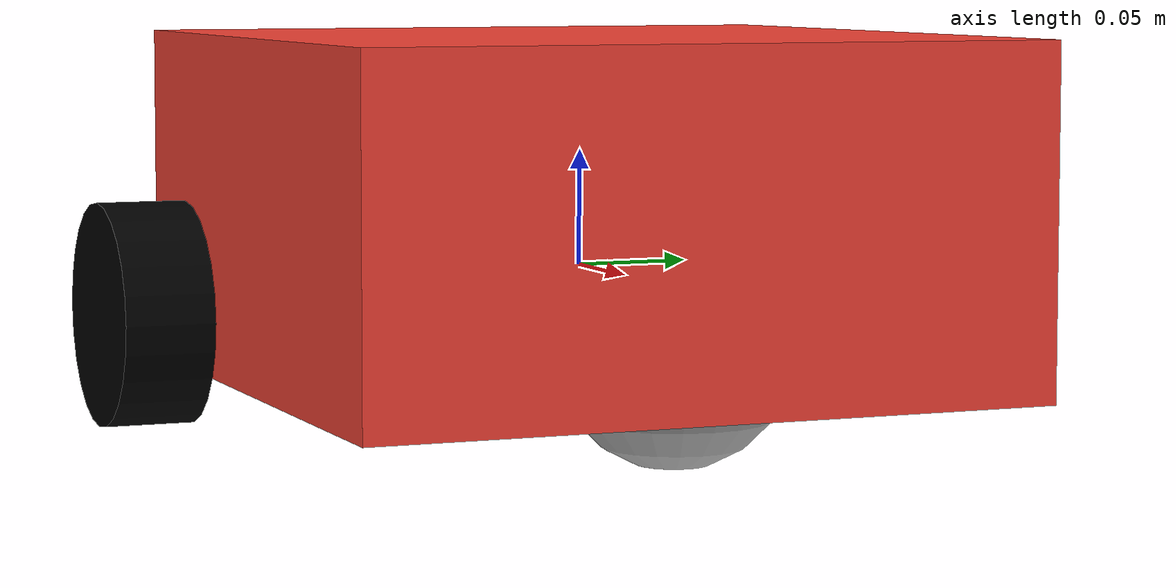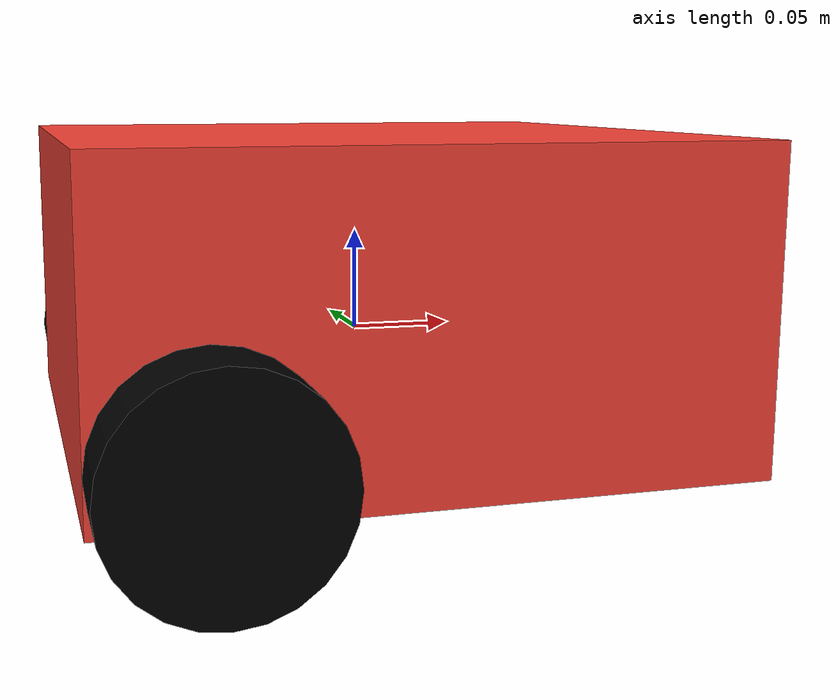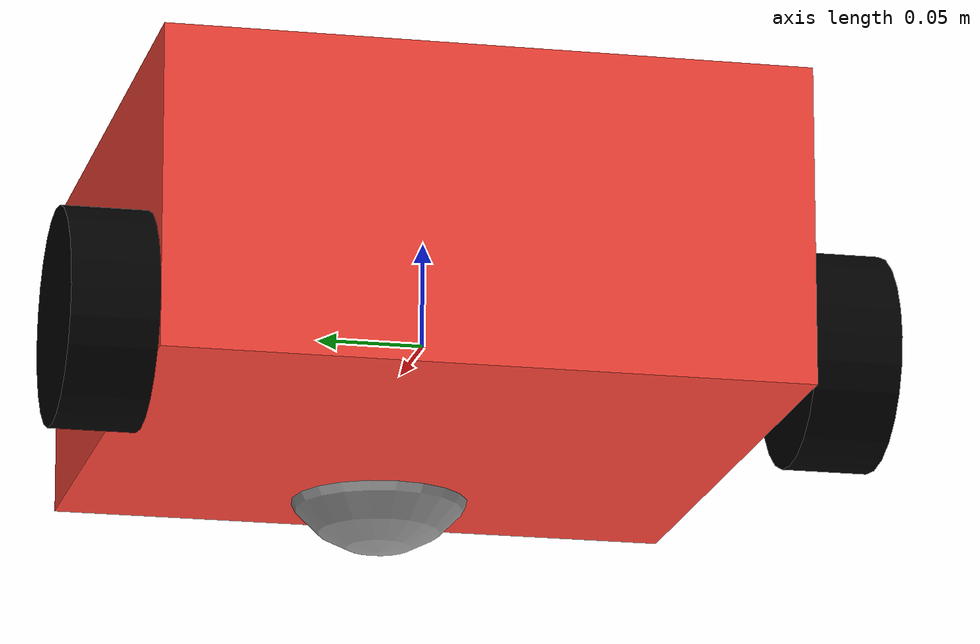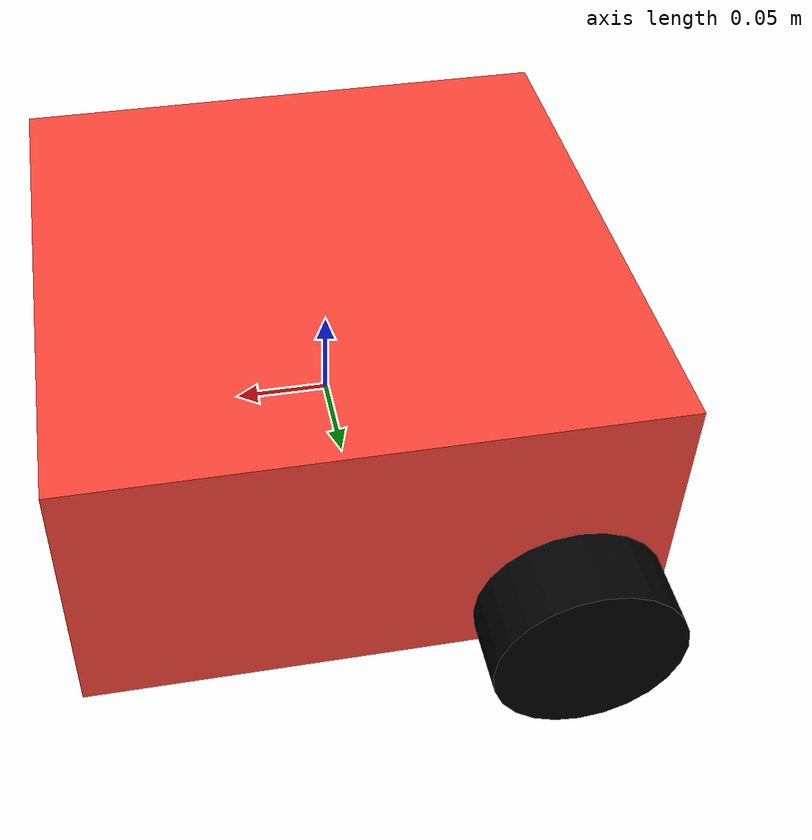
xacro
<?xml version="1.0"?>

<robot name="diff_drive_robot" xmlns:xacro="http://www.ros.org/wiki/xacro">

    <!-- Robot Parameters -->
    <xacro:property name="PI" value="3.14159265"/>

    <xacro:property name="chassis_length" value="0.3"/>
    <xacro:property name="chassis_width" value="0.3"/>
    <xacro:property name="chassis_height" value="0.15"/>
    <xacro:property name="chassis_density" value="7850.0"/> <!-- Steel -->
    <xacro:property name="chassis_mass" value="${chassis_density * chassis_length * chassis_height * chassis_width}"/>
    <xacro:property name="chassis_inertia_x" value="${1.0/12.0 * chassis_mass * (chassis_height*chassis_height + chassis_width*chassis_width)}"/>
    <xacro:property name="chassis_inertia_y" value="${1.0/12.0 * chassis_mass * (chassis_length*chassis_length + chassis_height*chassis_height)}"/>
    <xacro:property name="chassis_inertia_z" value="${1.0/12.0 * chassis_mass * (chassis_length*chassis_length + chassis_width*chassis_width)}"/>

    <xacro:property name="wheel_radius" value="0.05"/>
    <xacro:property name="wheel_width" value="0.04"/>
    <xacro:property name="wheel_separation" value="${chassis_width + wheel_width}"/>
    <xacro:property name="wheel_offset" value="${chassis_length/2 - wheel_radius}"/>
    <xacro:property name="wheel_density" value="900"/> <!-- Ruber -->
    <xacro:property name="wheel_mass" value="${wheel_density * PI * wheel_radius * wheel_radius * wheel_width}"/>
    <xacro:property name="wheel_inertia_x" value="${1.0/12.0 * wheel_mass * (3*wheel_radius*wheel_radius + wheel_width*wheel_width)}"/>
    <xacro:property name="wheel_inertia_y" value="${1.0/12.0 * wheel_mass * (3*wheel_radius*wheel_radius + wheel_width*wheel_width)}"/>
    <xacro:property name="wheel_inertia_z" value="${1.0/2.0 * wheel_mass * wheel_radius * wheel_radius}"/>

    <xacro:property name="caster_radius" value="0.05"/>
    <xacro:property name="caster_offset" value="${chassis_length/2 - caster_radius}"/>
    <xacro:property name="caster_density" value="0.1"/>
    <xacro:property name="caster_mass" value="${caster_density * 4.0/3.0 * PI * caster_radius * caster_radius * caster_radius}"/>
    <xacro:property name="caster_inertia_x" value="${2.0/5.0 * caster_mass * caster_radius * caster_radius}"/>
    <xacro:property name="caster_inertia_y" value="${2.0/5.0 * caster_mass * caster_radius * caster_radius}"/>
    <xacro:property name="caster_inertia_z" value="${2.0/5.0 * caster_mass * caster_radius * caster_radius}"/>

    <!-- Control Parameters -->
    <xacro:property name="max_linear_acceleration" value="10"/>

    <!-- Links -->

    <!-- chassis Link -->
    <link name="chassis_link">
        <visual>
            <origin xyz="0 0 ${caster_radius/2}" rpy="0.0 0.0 0.0"/>
            <geometry>
                <box size="${chassis_length} ${chassis_width} ${chassis_height}"/>
            </geometry>
            <material name="chassis_material">
                <color rgba="0.96 0.26 0.21 1.0"/>
            </material>
        </visual>
        <collision>
            <origin xyz="0 0 ${caster_radius/2}" rpy="0.0 0.0 0.0"/>
            <geometry>
                <box size="${chassis_length} ${chassis_width} ${chassis_height}"/>
            </geometry>
        </collision>
        <inertial>
            <mass value="10"/>
            <inertia ixx="${chassis_inertia_x}" ixy="0.0" ixz="0.0" iyy="${chassis_inertia_y}" iyz="0" izz="${chassis_inertia_z}"/>
            <origin xyz="0 0 ${caster_radius/2}" rpy="0 0 0"/>
        </inertial>
    </link>

    <!-- Left Wheel -->
    <link name="left_wheel_link">
        <visual>
            <origin xyz="0.0 0.0 0.0" rpy="${PI/2} 0.0 0.0"/>
            <geometry>
                <cylinder radius="${wheel_radius}" length="${wheel_width}"/>
            </geometry>
            <material name="wheel_material">
                <color rgba="0.0 0.0 0.0 1.0"/>
            </material>
        </visual>
        <collision>
            <origin xyz="0.0 0.0 0.0" rpy="${PI/2} 0.0 0.0"/>
            <geometry>
                <cylinder radius="${wheel_radius}" length="${wheel_width}"/>
            </geometry>
        </collision>
        <inertial>
            <mass value="2"/>
            <inertia ixx="${wheel_inertia_x}" ixy="0.0" ixz="0.0" iyy="${wheel_inertia_y}" iyz="0" izz="${wheel_inertia_z}"/>
            <origin xyz="0.0 0.0 0.0" rpy="${PI/2} 0.0 0.0"/>
        </inertial>
    </link>

    <!-- Right Wheel -->
    <link name="right_wheel_link">
        <visual>
            <origin xyz="0.0 0.0 0.0" rpy="${PI/2} 0.0 0.0"/>
            <geometry>
                <cylinder radius="${wheel_radius}" length="${wheel_width}"/>
            </geometry>
            <material name="wheel_material">
                <color rgba="0.0 0.0 0.0 1.0"/>
            </material>
        </visual>
        <collision>
            <origin xyz="0.0 0.0 0.0" rpy="${PI/2} 0.0 0.0"/>
            <geometry>
                <cylinder radius="${wheel_radius}" length="${wheel_width}"/>
            </geometry>
        </collision>
        <inertial>
            <mass value="2"/>
            <inertia ixx="${wheel_inertia_x}" ixy="0.0" ixz="0.0" iyy="${wheel_inertia_y}" iyz="0" izz="${wheel_inertia_z}"/>
            <origin xyz="0.0 0.0 0.0" rpy="${PI/2} 0.0 0.0"/>
        </inertial>
    </link>

    <!-- Caster Wheel -->
    <link name="caster_link">
        <visual>
            <origin xyz="0.0 0.0 0.0" rpy="0.0 0.0 0.0"/>
            <geometry>
                <sphere radius="${caster_radius}"/>
            </geometry>
            <material name="caster_material">
                <color rgba="0.62 0.62 0.62 1.0"/>
            </material>
        </visual>
        <collision>
            <origin xyz="0.0 0.0 0.0" rpy="0.0 0.0 0.0"/>
            <geometry>
                <sphere radius="${caster_radius}"/>
            </geometry>
        </collision>
        <inertial>
            <mass value="0.5"/>
            <inertia ixx="${caster_inertia_x}" ixy="0.0" ixz="0.0" iyy="${caster_inertia_y}" iyz="0" izz="${caster_inertia_z}"/>
            <origin xyz="0 0 0" rpy="0 0 0"/>
        </inertial>
    </link>

    <!-- Joints -->

    <!-- Left Wheel Joint -->
    <joint name="left_wheel_joint" type="continuous">
        <origin xyz="-${wheel_offset} ${wheel_separation/2} -${wheel_radius/2}" rpy="0 0 0"/>
        <parent link="chassis_link"/>
        <child link="left_wheel_link"/>
        <axis xyz="0 1 0"/>
        <limit effort="100" velocity="10.0"/>
        <dynamics damping="0.1" friction="0.1"/>
    </joint>

    <!-- Right Wheel Joint -->
    <joint name="right_wheel_joint" type="continuous">
        <origin xyz="-${wheel_offset} ${-wheel_separation/2} -${wheel_radius/2}" rpy="0 0 0"/>
        <parent link="chassis_link"/>
        <child link="right_wheel_link"/>
        <axis xyz="0 1 0"/>
        <limit effort="100" velocity="10.0"/>
        <dynamics damping="0.1" friction="0.1"/>
    </joint>

    <!-- Caster Wheel Joint (fixed) -->
    <joint name="caster_joint" type="fixed">
        <origin xyz="${caster_offset} 0 -${caster_radius/2}" rpy="0 0 0"/>
        <parent link="chassis_link"/>
        <child link="caster_link"/>
    </joint>

    <!-- Gazebo Parameters -->
    <gazebo reference="chassis_link">
        <mu1>1.0</mu1>
        <mu2>1.0</mu2>
    </gazebo>

    <gazebo reference="right_wheel_link">
        <mu1>1.0</mu1>
        <mu2>1.0</mu2>
    </gazebo>

    <gazebo reference="left_wheel_link">
        <mu1>1.0</mu1>
        <mu2>1.0</mu2>
    </gazebo>

    <gazebo reference="caster_link">
        <mu1>0.000001</mu1>
        <mu2>0.000001</mu2>
    </gazebo>

    <!-- Gazebo Plugins -->
    <gazebo>
        <plugin filename="gz-sim-diff-drive-system" name="gz::sim::systems::DiffDrive">
            <right_joint>right_wheel_joint</right_joint>
            <left_joint>left_wheel_joint</left_joint>
            <wheel_separation>${wheel_separation}</wheel_separation>
            <wheel_radius>${wheel_radius}</wheel_radius>
            <max_linear_acceleration>${max_linear_acceleration}</max_linear_acceleration>
            <odom_publish_frequency>100</odom_publish_frequency>
            <topic>cmd_vel</topic>
            <odom_topic>odom</odom_topic>
        </plugin>

        <plugin filename="gz-sim-joint-state-publisher-system" name="gz::sim::systems::JointStatePublisher">
            <topic>joint_states</topic>
            <joint_name>right_wheel_joint</joint_name>
            <joint_name>left_wheel_joint</joint_name>
        </plugin>
    </gazebo>

</robot>
